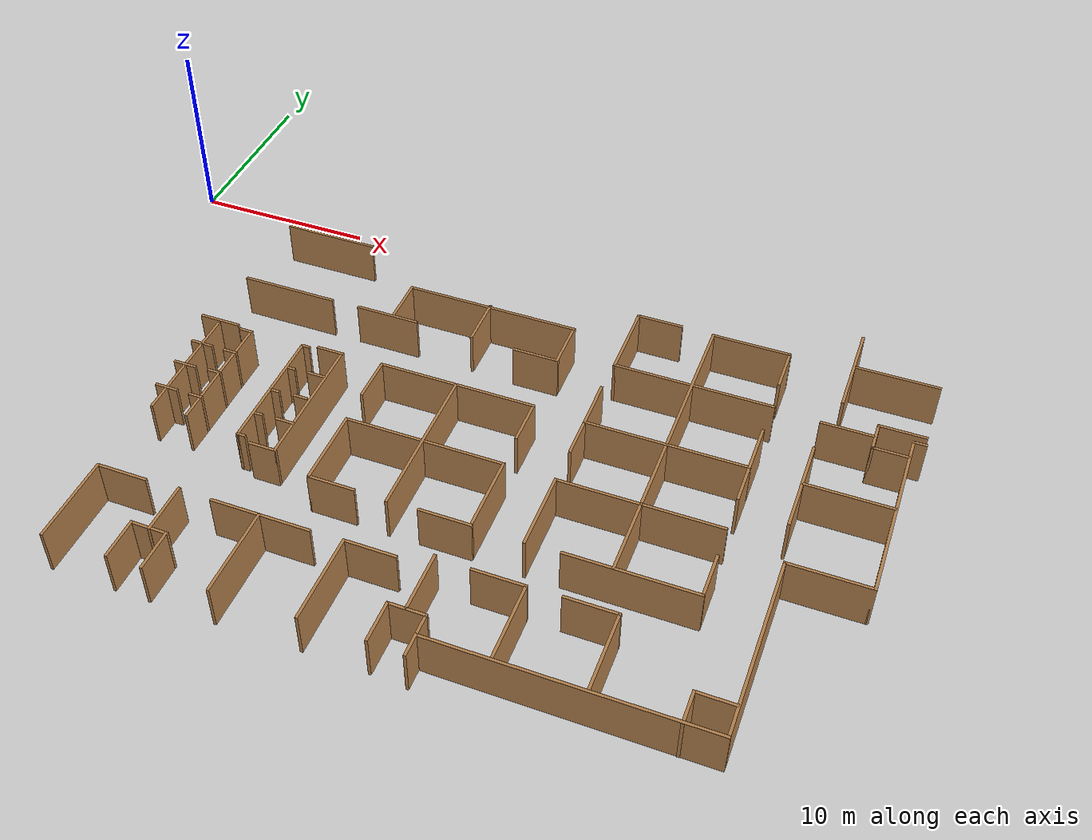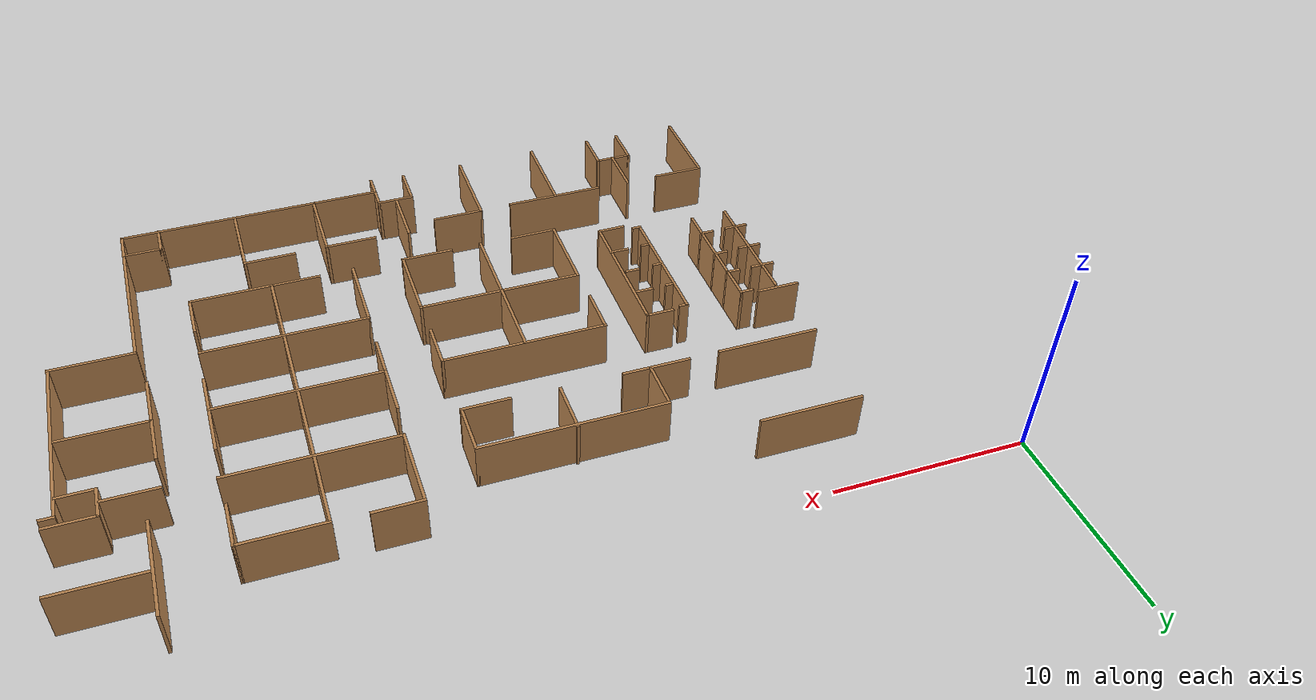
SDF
<sdf version="1.6">
 <model name="floor_plan">
  <pose>-1.19231 -1.13475 0 0 -0 0</pose>
  <link name="Wall_15">
   <collision name="Wall_15_Collision">
    <geometry><box><size>0.75 0.15 2.5</size></box></geometry>
    <pose>0 0 1.25 0 -0 0</pose>
   </collision>
   <visual name="Wall_15_Visual">
    <pose>0 0 1.25 0 -0 0</pose>
    <geometry><box><size>0.75 0.15 2.5</size></box></geometry>
    <material>
     <script><uri>file://media/materials/scripts/gazebo.material</uri><name>Gazebo/Wood</name></script>
     <ambient>1 1 1 1</ambient>
    </material>
   </visual>
   <pose>45.05 -6.1786 0 0 -0 3.14159</pose>
  </link>
  <link name="Wall_16">
   <collision name="Wall_16_Collision">
    <geometry><box><size>9.75 0.15 2.5</size></box></geometry>
    <pose>0 0 1.25 0 -0 0</pose>
   </collision>
   <visual name="Wall_16_Visual">
    <pose>0 0 1.25 0 -0 0</pose>
    <geometry><box><size>9.75 0.15 2.5</size></box></geometry>
    <material>
     <script><uri>file://media/materials/scripts/gazebo.material</uri><name>Gazebo/Wood</name></script>
     <ambient>1 1 1 1</ambient>
    </material>
   </visual>
   <pose>44.75 -10.9786 0 0 0 -1.5708</pose>
  </link>
  <link name="Wall_17">
   <collision name="Wall_17_Collision">
    <geometry><box><size>4.25 0.15 2.5</size></box></geometry>
    <pose>0 0 1.25 0 -0 0</pose>
   </collision>
   <visual name="Wall_17_Visual">
    <pose>0 0 1.25 0 -0 0</pose>
    <geometry><box><size>4.25 0.15 2.5</size></box></geometry>
    <material>
     <script><uri>file://media/materials/scripts/gazebo.material</uri><name>Gazebo/Wood</name></script>
     <ambient>1 1 1 1</ambient>
    </material>
   </visual>
   <pose>42.7 -15.7786 0 0 -0 3.14159</pose>
  </link>
  <link name="Wall_18">
   <collision name="Wall_18_Collision">
    <geometry><box><size>9.75 0.15 2.5</size></box></geometry>
    <pose>0 0 1.25 0 -0 0</pose>
   </collision>
   <visual name="Wall_18_Visual">
    <pose>0 0 1.25 0 -0 0</pose>
    <geometry><box><size>9.75 0.15 2.5</size></box></geometry>
    <material>
     <script><uri>file://media/materials/scripts/gazebo.material</uri><name>Gazebo/Wood</name></script>
     <ambient>1 1 1 1</ambient>
    </material>
   </visual>
   <pose>40.65 -20.5786 0 0 0 -1.5708</pose>
  </link>
  <link name="Wall_19">
   <collision name="Wall_19_Collision">
    <geometry><box><size>14 0.15 2.5</size></box></geometry>
    <pose>0 0 1.25 0 -0 0</pose>
   </collision>
   <visual name="Wall_19_Visual">
    <pose>0 0 1.25 0 -0 0</pose>
    <geometry><box><size>14 0.15 2.5</size></box></geometry>
    <material>
     <script><uri>file://media/materials/scripts/gazebo.material</uri><name>Gazebo/Wood</name></script>
     <ambient>1 1 1 1</ambient>
    </material>
   </visual>
   <pose>33.725 -25.3786 0 0 -0 3.14159</pose>
  </link>
  <link name="Wall_20">
   <collision name="Wall_20_Collision">
    <geometry><box><size>1.25 0.15 2.5</size></box></geometry>
    <pose>0 0 1.25 0 -0 0</pose>
   </collision>
   <visual name="Wall_20_Visual">
    <pose>0 0 1.25 0 -0 0</pose>
    <geometry><box><size>1.25 0.15 2.5</size></box></geometry>
    <material>
     <script><uri>file://media/materials/scripts/gazebo.material</uri><name>Gazebo/Wood</name></script>
     <ambient>1 1 1 1</ambient>
    </material>
   </visual>
   <pose>26.8 -25.9286 0 0 0 -1.5708</pose>
  </link>
  <link name="Wall_221">
   <collision name="Wall_221_Collision">
    <geometry><box><size>5.25 0.15 2.5</size></box></geometry>
    <pose>0 0 1.25 0 -0 0</pose>
   </collision>
   <visual name="Wall_221_Visual">
    <pose>0 0 1.25 0 -0 0</pose>
    <geometry><box><size>5.25 0.15 2.5</size></box></geometry>
    <material>
     <script><uri>file://media/materials/scripts/gazebo.material</uri><name>Gazebo/Wood</name></script>
     <ambient>1 1 1 1</ambient>
    </material>
   </visual>
   <pose>40.9639 -2.14991 0 0 0 -1.5708</pose>
  </link>
  <link name="Wall_223">
   <collision name="Wall_223_Collision">
    <geometry><box><size>4.4 0.15 2.5</size></box></geometry>
    <pose>0 0 1.25 0 -0 0</pose>
   </collision>
   <visual name="Wall_223_Visual">
    <pose>0 0 1.25 0 -0 0</pose>
    <geometry><box><size>4.4 0.15 2.5</size></box></geometry>
    <material>
     <script><uri>file://media/materials/scripts/gazebo.material</uri><name>Gazebo/Wood</name></script>
     <ambient>1 1 1 1</ambient>
    </material>
   </visual>
   <pose>43.2195 -1.93728 0 0 -0 3.14159</pose>
  </link>
  <link name="Wall_228">
   <collision name="Wall_228_Collision">
    <geometry><box><size>2.5 0.15 2.5</size></box></geometry>
    <pose>0 0 1.25 0 -0 0</pose>
   </collision>
   <visual name="Wall_228_Visual">
    <pose>0 0 1.25 0 -0 0</pose>
    <geometry><box><size>2.5 0.15 2.5</size></box></geometry>
    <material>
     <script><uri>file://media/materials/scripts/gazebo.material</uri><name>Gazebo/Wood</name></script>
     <ambient>1 1 1 1</ambient>
    </material>
   </visual>
   <pose>44.1176 -5.67636 0 0 -0 3.14159</pose>
  </link>
  <link name="Wall_229">
   <collision name="Wall_229_Collision">
    <geometry><box><size>1.75 0.15 2.5</size></box></geometry>
    <pose>0 0 1.25 0 -0 0</pose>
   </collision>
   <visual name="Wall_229_Visual">
    <pose>0 0 1.25 0 -0 0</pose>
    <geometry><box><size>1.75 0.15 2.5</size></box></geometry>
    <material>
     <script><uri>file://media/materials/scripts/gazebo.material</uri><name>Gazebo/Wood</name></script>
     <ambient>1 1 1 1</ambient>
    </material>
   </visual>
   <pose>42.9426 -6.47636 0 0 0 -1.5708</pose>
  </link>
  <link name="Wall_230">
   <collision name="Wall_230_Collision">
    <geometry><box><size>1.9 0.15 2.5</size></box></geometry>
    <pose>0 0 1.25 0 -0 0</pose>
   </collision>
   <visual name="Wall_230_Visual">
    <pose>0 0 1.25 0 -0 0</pose>
    <geometry><box><size>1.9 0.15 2.5</size></box></geometry>
    <material>
     <script><uri>file://media/materials/scripts/gazebo.material</uri><name>Gazebo/Wood</name></script>
     <ambient>1 1 1 1</ambient>
    </material>
   </visual>
   <pose>43.8176 -7.27636 0 0 -0 0</pose>
  </link>
  <link name="Wall_232">
   <collision name="Wall_232_Collision">
    <geometry><box><size>2.75 0.15 2.5</size></box></geometry>
    <pose>0 0 1.25 0 -0 0</pose>
   </collision>
   <visual name="Wall_232_Visual">
    <pose>0 0 1.25 0 -0 0</pose>
    <geometry><box><size>2.75 0.15 2.5</size></box></geometry>
    <material>
     <script><uri>file://media/materials/scripts/gazebo.material</uri><name>Gazebo/Wood</name></script>
     <ambient>1 1 1 1</ambient>
    </material>
   </visual>
   <pose>41.5582 -6.4904 0 0 -0 3.14159</pose>
  </link>
  <link name="Wall_234">
   <collision name="Wall_234_Collision">
    <geometry><box><size>5.25 0.15 2.5</size></box></geometry>
    <pose>0 0 1.25 0 -0 0</pose>
   </collision>
   <visual name="Wall_234_Visual">
    <pose>0 0 1.25 0 -0 0</pose>
    <geometry><box><size>5.25 0.15 2.5</size></box></geometry>
    <material>
     <script><uri>file://media/materials/scripts/gazebo.material</uri><name>Gazebo/Wood</name></script>
     <ambient>1 1 1 1</ambient>
    </material>
   </visual>
   <pose>40.2991 -10.8994 0 0 0 -1.5708</pose>
  </link>
  <link name="Wall_236">
   <collision name="Wall_236_Collision">
    <geometry><box><size>4.5 0.15 2.5</size></box></geometry>
    <pose>0 0 1.25 0 -0 0</pose>
   </collision>
   <visual name="Wall_236_Visual">
    <pose>0 0 1.25 0 -0 0</pose>
    <geometry><box><size>4.5 0.15 2.5</size></box></geometry>
    <material>
     <script><uri>file://media/materials/scripts/gazebo.material</uri><name>Gazebo/Wood</name></script>
     <ambient>1 1 1 1</ambient>
    </material>
   </visual>
   <pose>42.5224 -10.7998 0 0 -0 0</pose>
  </link>
  <link name="Wall_238">
   <collision name="Wall_238_Collision">
    <geometry><box><size>2 0.15 2.5</size></box></geometry>
    <pose>0 0 1.25 0 -0 0</pose>
   </collision>
   <visual name="Wall_238_Visual">
    <pose>0 0 1.25 0 -0 0</pose>
    <geometry><box><size>2 0.15 2.5</size></box></geometry>
    <material>
     <script><uri>file://media/materials/scripts/gazebo.material</uri><name>Gazebo/Wood</name></script>
     <ambient>1 1 1 1</ambient>
    </material>
   </visual>
   <pose>39.6556 -23.8032 0 0 -0 3.14159</pose>
  </link>
  <link name="Wall_239">
   <collision name="Wall_239_Collision">
    <geometry><box><size>1.75 0.15 2.5</size></box></geometry>
    <pose>0 0 1.25 0 -0 0</pose>
   </collision>
   <visual name="Wall_239_Visual">
    <pose>0 0 1.25 0 -0 0</pose>
    <geometry><box><size>1.75 0.15 2.5</size></box></geometry>
    <material>
     <script><uri>file://media/materials/scripts/gazebo.material</uri><name>Gazebo/Wood</name></script>
     <ambient>1 1 1 1</ambient>
    </material>
   </visual>
   <pose>38.7306 -24.6032 0 0 0 -1.5708</pose>
  </link>
  <link name="Wall_241">
   <collision name="Wall_241_Collision">
    <geometry><box><size>2.5 0.15 2.5</size></box></geometry>
    <pose>0 0 1.25 0 -0 0</pose>
   </collision>
   <visual name="Wall_241_Visual">
    <pose>0 0 1.25 0 -0 0</pose>
    <geometry><box><size>2.5 0.15 2.5</size></box></geometry>
    <material>
     <script><uri>file://media/materials/scripts/gazebo.material</uri><name>Gazebo/Wood</name></script>
     <ambient>1 1 1 1</ambient>
    </material>
   </visual>
   <pose>37.7304 -17.6945 0 0 0 -1.5708</pose>
  </link>
  <link name="Wall_242">
   <collision name="Wall_242_Collision">
    <geometry><box><size>6.75 0.15 2.5</size></box></geometry>
    <pose>0 0 1.25 0 -0 0</pose>
   </collision>
   <visual name="Wall_242_Visual">
    <pose>0 0 1.25 0 -0 0</pose>
    <geometry><box><size>6.75 0.15 2.5</size></box></geometry>
    <material>
     <script><uri>file://media/materials/scripts/gazebo.material</uri><name>Gazebo/Wood</name></script>
     <ambient>1 1 1 1</ambient>
    </material>
   </visual>
   <pose>34.4304 -18.8695 0 0 -0 3.14159</pose>
  </link>
  <link name="Wall_244">
   <collision name="Wall_244_Collision">
    <geometry><box><size>4.25 0.15 2.5</size></box></geometry>
    <pose>0 0 1.25 0 -0 0</pose>
   </collision>
   <visual name="Wall_244_Visual">
    <pose>0 0 1.25 0 -0 0</pose>
    <geometry><box><size>4.25 0.15 2.5</size></box></geometry>
    <material>
     <script><uri>file://media/materials/scripts/gazebo.material</uri><name>Gazebo/Wood</name></script>
     <ambient>1 1 1 1</ambient>
    </material>
   </visual>
   <pose>29.3262 -16.8568 0 0 -0 1.5708</pose>
  </link>
  <link name="Wall_245">
   <collision name="Wall_245_Collision">
    <geometry><box><size>8.5 0.15 2.5</size></box></geometry>
    <pose>0 0 1.25 0 -0 0</pose>
   </collision>
   <visual name="Wall_245_Visual">
    <pose>0 0 1.25 0 -0 0</pose>
    <geometry><box><size>8.5 0.15 2.5</size></box></geometry>
    <material>
     <script><uri>file://media/materials/scripts/gazebo.material</uri><name>Gazebo/Wood</name></script>
     <ambient>1 1 1 1</ambient>
    </material>
   </visual>
   <pose>33.5012 -14.8068 0 0 -0 0</pose>
  </link>
  <link name="Wall_247">
   <collision name="Wall_247_Collision">
    <geometry><box><size>16.75 0.15 2.5</size></box></geometry>
    <pose>0 0 1.25 0 -0 0</pose>
   </collision>
   <visual name="Wall_247_Visual">
    <pose>0 0 1.25 0 -0 0</pose>
    <geometry><box><size>16.75 0.15 2.5</size></box></geometry>
    <material>
     <script><uri>file://media/materials/scripts/gazebo.material</uri><name>Gazebo/Wood</name></script>
     <ambient>1 1 1 1</ambient>
    </material>
   </visual>
   <pose>33.575 -10.534 0 0 -0 1.5708</pose>
  </link>
  <link name="Wall_249">
   <collision name="Wall_249_Collision">
    <geometry><box><size>2.5 0.15 2.5</size></box></geometry>
    <pose>0 0 1.25 0 -0 0</pose>
   </collision>
   <visual name="Wall_249_Visual">
    <pose>0 0 1.25 0 -0 0</pose>
    <geometry><box><size>2.5 0.15 2.5</size></box></geometry>
    <material>
     <script><uri>file://media/materials/scripts/gazebo.material</uri><name>Gazebo/Wood</name></script>
     <ambient>1 1 1 1</ambient>
    </material>
   </visual>
   <pose>30.631 -2.1715 0 0 -0 3.14159</pose>
  </link>
  <link name="Wall_250">
   <collision name="Wall_250_Collision">
    <geometry><box><size>4.25 0.15 2.5</size></box></geometry>
    <pose>0 0 1.25 0 -0 0</pose>
   </collision>
   <visual name="Wall_250_Visual">
    <pose>0 0 1.25 0 -0 0</pose>
    <geometry><box><size>4.25 0.15 2.5</size></box></geometry>
    <material>
     <script><uri>file://media/materials/scripts/gazebo.material</uri><name>Gazebo/Wood</name></script>
     <ambient>1 1 1 1</ambient>
    </material>
   </visual>
   <pose>29.456 -4.2215 0 0 0 -1.5708</pose>
  </link>
  <link name="Wall_251">
   <collision name="Wall_251_Collision">
    <geometry><box><size>8.5 0.15 2.5</size></box></geometry>
    <pose>0 0 1.25 0 -0 0</pose>
   </collision>
   <visual name="Wall_251_Visual">
    <pose>0 0 1.25 0 -0 0</pose>
    <geometry><box><size>8.5 0.15 2.5</size></box></geometry>
    <material>
     <script><uri>file://media/materials/scripts/gazebo.material</uri><name>Gazebo/Wood</name></script>
     <ambient>1 1 1 1</ambient>
    </material>
   </visual>
   <pose>33.631 -6.2715 0 0 -0 0</pose>
  </link>
  <link name="Wall_253">
   <collision name="Wall_253_Collision">
    <geometry><box><size>4.25 0.15 2.5</size></box></geometry>
    <pose>0 0 1.25 0 -0 0</pose>
   </collision>
   <visual name="Wall_253_Visual">
    <pose>0 0 1.25 0 -0 0</pose>
    <geometry><box><size>4.25 0.15 2.5</size></box></geometry>
    <material>
     <script><uri>file://media/materials/scripts/gazebo.material</uri><name>Gazebo/Wood</name></script>
     <ambient>1 1 1 1</ambient>
    </material>
   </visual>
   <pose>35.6251 -2.23396 0 0 -0 0</pose>
  </link>
  <link name="Wall_254">
   <collision name="Wall_254_Collision">
    <geometry><box><size>2.5 0.15 2.5</size></box></geometry>
    <pose>0 0 1.25 0 -0 0</pose>
   </collision>
   <visual name="Wall_254_Visual">
    <pose>0 0 1.25 0 -0 0</pose>
    <geometry><box><size>2.5 0.15 2.5</size></box></geometry>
    <material>
     <script><uri>file://media/materials/scripts/gazebo.material</uri><name>Gazebo/Wood</name></script>
     <ambient>1 1 1 1</ambient>
    </material>
   </visual>
   <pose>37.675 -3.40896 0 0 0 -1.5708</pose>
  </link>
  <link name="Wall_256">
   <collision name="Wall_256_Collision">
    <geometry><box><size>2.75 0.15 2.5</size></box></geometry>
    <pose>0 0 1.25 0 -0 0</pose>
   </collision>
   <visual name="Wall_256_Visual">
    <pose>0 0 1.25 0 -0 0</pose>
    <geometry><box><size>2.75 0.15 2.5</size></box></geometry>
    <material>
     <script><uri>file://media/materials/scripts/gazebo.material</uri><name>Gazebo/Wood</name></script>
     <ambient>1 1 1 1</ambient>
    </material>
   </visual>
   <pose>29.357 -9.40409 0 0 0 -1.5708</pose>
  </link>
  <link name="Wall_257">
   <collision name="Wall_257_Collision">
    <geometry><box><size>8.5 0.15 2.5</size></box></geometry>
    <pose>0 0 1.25 0 -0 0</pose>
   </collision>
   <visual name="Wall_257_Visual">
    <pose>0 0 1.25 0 -0 0</pose>
    <geometry><box><size>8.5 0.15 2.5</size></box></geometry>
    <material>
     <script><uri>file://media/materials/scripts/gazebo.material</uri><name>Gazebo/Wood</name></script>
     <ambient>1 1 1 1</ambient>
    </material>
   </visual>
   <pose>33.532 -10.7041 0 0 -0 0</pose>
  </link>
  <link name="Wall_258">
   <collision name="Wall_258_Collision">
    <geometry><box><size>2.75 0.15 2.5</size></box></geometry>
    <pose>0 0 1.25 0 -0 0</pose>
   </collision>
   <visual name="Wall_258_Visual">
    <pose>0 0 1.25 0 -0 0</pose>
    <geometry><box><size>2.75 0.15 2.5</size></box></geometry>
    <material>
     <script><uri>file://media/materials/scripts/gazebo.material</uri><name>Gazebo/Wood</name></script>
     <ambient>1 1 1 1</ambient>
    </material>
   </visual>
   <pose>37.707 -9.40409 0 0 -0 1.5708</pose>
  </link>
  <link name="Wall_260">
   <collision name="Wall_260_Collision">
    <geometry><box><size>2.25 0.15 2.5</size></box></geometry>
    <pose>0 0 1.25 0 -0 0</pose>
   </collision>
   <visual name="Wall_260_Visual">
    <pose>0 0 1.25 0 -0 0</pose>
    <geometry><box><size>2.25 0.15 2.5</size></box></geometry>
    <material>
     <script><uri>file://media/materials/scripts/gazebo.material</uri><name>Gazebo/Wood</name></script>
     <ambient>1 1 1 1</ambient>
    </material>
   </visual>
   <pose>37.707 -11.7541 0 0 0 -1.5708</pose>
  </link>
  <link name="Wall_262">
   <collision name="Wall_262_Collision">
    <geometry><box><size>2.25 0.15 2.5</size></box></geometry>
    <pose>0 0 1.25 0 -0 0</pose>
   </collision>
   <visual name="Wall_262_Visual">
    <pose>0 0 1.25 0 -0 0</pose>
    <geometry><box><size>2.25 0.15 2.5</size></box></geometry>
    <material>
     <script><uri>file://media/materials/scripts/gazebo.material</uri><name>Gazebo/Wood</name></script>
     <ambient>1 1 1 1</ambient>
    </material>
   </visual>
   <pose>29.357 -11.7541 0 0 0 -1.5708</pose>
  </link>
  <link name="Wall_264">
   <collision name="Wall_264_Collision">
    <geometry><box><size>4.25 0.15 2.5</size></box></geometry>
    <pose>0 0 1.25 0 -0 0</pose>
   </collision>
   <visual name="Wall_264_Visual">
    <pose>0 0 1.25 0 -0 0</pose>
    <geometry><box><size>4.25 0.15 2.5</size></box></geometry>
    <material>
     <script><uri>file://media/materials/scripts/gazebo.material</uri><name>Gazebo/Wood</name></script>
     <ambient>1 1 1 1</ambient>
    </material>
   </visual>
   <pose>34.6333 -23.2208 0 0 -0 1.5708</pose>
  </link>
  <link name="Wall_265">
   <collision name="Wall_265_Collision">
    <geometry><box><size>2.75 0.15 2.5</size></box></geometry>
    <pose>0 0 1.25 0 -0 0</pose>
   </collision>
   <visual name="Wall_265_Visual">
    <pose>0 0 1.25 0 -0 0</pose>
    <geometry><box><size>2.75 0.15 2.5</size></box></geometry>
    <material>
     <script><uri>file://media/materials/scripts/gazebo.material</uri><name>Gazebo/Wood</name></script>
     <ambient>1 1 1 1</ambient>
    </material>
   </visual>
   <pose>33.3333 -21.1708 0 0 -0 3.14159</pose>
  </link>
  <link name="Wall_269">
   <collision name="Wall_269_Collision">
    <geometry><box><size>4.25 0.15 2.5</size></box></geometry>
    <pose>0 0 1.25 0 -0 0</pose>
   </collision>
   <visual name="Wall_269_Visual">
    <pose>0 0 1.25 0 -0 0</pose>
    <geometry><box><size>4.25 0.15 2.5</size></box></geometry>
    <material>
     <script><uri>file://media/materials/scripts/gazebo.material</uri><name>Gazebo/Wood</name></script>
     <ambient>1 1 1 1</ambient>
    </material>
   </visual>
   <pose>30.2855 -23.2732 0 0 -0 1.5708</pose>
  </link>
  <link name="Wall_270">
   <collision name="Wall_270_Collision">
    <geometry><box><size>2.75 0.15 2.5</size></box></geometry>
    <pose>0 0 1.25 0 -0 0</pose>
   </collision>
   <visual name="Wall_270_Visual">
    <pose>0 0 1.25 0 -0 0</pose>
    <geometry><box><size>2.75 0.15 2.5</size></box></geometry>
    <material>
     <script><uri>file://media/materials/scripts/gazebo.material</uri><name>Gazebo/Wood</name></script>
     <ambient>1 1 1 1</ambient>
    </material>
   </visual>
   <pose>28.9855 -21.2232 0 0 -0 3.14159</pose>
  </link>
  <link name="Wall_276">
   <collision name="Wall_276_Collision">
    <geometry><box><size>1.25 0.15 2.5</size></box></geometry>
    <pose>0 0 1.25 0 -0 0</pose>
   </collision>
   <visual name="Wall_276_Visual">
    <pose>0 0 1.25 0 -0 0</pose>
    <geometry><box><size>1.25 0.15 2.5</size></box></geometry>
    <material>
     <script><uri>file://media/materials/scripts/gazebo.material</uri><name>Gazebo/Wood</name></script>
     <ambient>1 1 1 1</ambient>
    </material>
   </visual>
   <pose>26.8 -24.8286 0 0 -0 1.5708</pose>
  </link>
  <link name="Wall_278">
   <collision name="Wall_278_Collision">
    <geometry><box><size>2 0.15 2.5</size></box></geometry>
    <pose>0 0 1.25 0 -0 0</pose>
   </collision>
   <visual name="Wall_278_Visual">
    <pose>0 0 1.25 0 -0 0</pose>
    <geometry><box><size>2 0.15 2.5</size></box></geometry>
    <material>
     <script><uri>file://media/materials/scripts/gazebo.material</uri><name>Gazebo/Wood</name></script>
     <ambient>1 1 1 1</ambient>
    </material>
   </visual>
   <pose>25.875 -24.2786 0 0 -0 3.14159</pose>
  </link>
  <link name="Wall_279">
   <collision name="Wall_279_Collision">
    <geometry><box><size>2.25 0.15 2.5</size></box></geometry>
    <pose>0 0 1.25 0 -0 0</pose>
   </collision>
   <visual name="Wall_279_Visual">
    <pose>0 0 1.25 0 -0 0</pose>
    <geometry><box><size>2.25 0.15 2.5</size></box></geometry>
    <material>
     <script><uri>file://media/materials/scripts/gazebo.material</uri><name>Gazebo/Wood</name></script>
     <ambient>1 1 1 1</ambient>
    </material>
   </visual>
   <pose>24.95 -25.3286 0 0 0 -1.5708</pose>
  </link>
  <link name="Wall_281">
   <collision name="Wall_281_Collision">
    <geometry><box><size>3.25 0.15 2.5</size></box></geometry>
    <pose>0 0 1.25 0 -0 0</pose>
   </collision>
   <visual name="Wall_281_Visual">
    <pose>0 0 1.25 0 -0 0</pose>
    <geometry><box><size>3.25 0.15 2.5</size></box></geometry>
    <material>
     <script><uri>file://media/materials/scripts/gazebo.material</uri><name>Gazebo/Wood</name></script>
     <ambient>1 1 1 1</ambient>
    </material>
   </visual>
   <pose>25.8315 -22.6587 0 0 0 -1.5708</pose>
  </link>
  <link name="Wall_283">
   <collision name="Wall_283_Collision">
    <geometry><box><size>4.75 0.15 2.5</size></box></geometry>
    <pose>0 0 1.25 0 -0 0</pose>
   </collision>
   <visual name="Wall_283_Visual">
    <pose>0 0 1.25 0 -0 0</pose>
    <geometry><box><size>4.75 0.15 2.5</size></box></geometry>
    <material>
     <script><uri>file://media/materials/scripts/gazebo.material</uri><name>Gazebo/Wood</name></script>
     <ambient>1 1 1 1</ambient>
    </material>
   </visual>
   <pose>21.6011 -24.0928 0 0 -0 1.5708</pose>
  </link>
  <link name="Wall_284">
   <collision name="Wall_284_Collision">
    <geometry><box><size>2.75 0.15 2.5</size></box></geometry>
    <pose>0 0 1.25 0 -0 0</pose>
   </collision>
   <visual name="Wall_284_Visual">
    <pose>0 0 1.25 0 -0 0</pose>
    <geometry><box><size>2.75 0.15 2.5</size></box></geometry>
    <material>
     <script><uri>file://media/materials/scripts/gazebo.material</uri><name>Gazebo/Wood</name></script>
     <ambient>1 1 1 1</ambient>
    </material>
   </visual>
   <pose>22.9011 -21.7928 0 0 -0 0</pose>
  </link>
  <link name="Wall_286">
   <collision name="Wall_286_Collision">
    <geometry><box><size>5.25 0.15 2.5</size></box></geometry>
    <pose>0 0 1.25 0 -0 0</pose>
   </collision>
   <visual name="Wall_286_Visual">
    <pose>0 0 1.25 0 -0 0</pose>
    <geometry><box><size>5.25 0.15 2.5</size></box></geometry>
    <material>
     <script><uri>file://media/materials/scripts/gazebo.material</uri><name>Gazebo/Wood</name></script>
     <ambient>1 1 1 1</ambient>
    </material>
   </visual>
   <pose>17.3025 -21.8431 0 0 -0 0</pose>
  </link>
  <link name="Wall_288">
   <collision name="Wall_288_Collision">
    <geometry><box><size>4.75 0.15 2.5</size></box></geometry>
    <pose>0 0 1.25 0 -0 0</pose>
   </collision>
   <visual name="Wall_288_Visual">
    <pose>0 0 1.25 0 -0 0</pose>
    <geometry><box><size>4.75 0.15 2.5</size></box></geometry>
    <material>
     <script><uri>file://media/materials/scripts/gazebo.material</uri><name>Gazebo/Wood</name></script>
     <ambient>1 1 1 1</ambient>
    </material>
   </visual>
   <pose>17.2588 -24.175 0 0 0 -1.5708</pose>
  </link>
  <link name="Wall_290">
   <collision name="Wall_290_Collision">
    <geometry><box><size>2.25 0.15 2.5</size></box></geometry>
    <pose>0 0 1.25 0 -0 0</pose>
   </collision>
   <visual name="Wall_290_Visual">
    <pose>0 0 1.25 0 -0 0</pose>
    <geometry><box><size>2.25 0.15 2.5</size></box></geometry>
    <material>
     <script><uri>file://media/materials/scripts/gazebo.material</uri><name>Gazebo/Wood</name></script>
     <ambient>1 1 1 1</ambient>
    </material>
   </visual>
   <pose>13.8425 -25.4226 0 0 -0 1.5708</pose>
  </link>
  <link name="Wall_291">
   <collision name="Wall_291_Collision">
    <geometry><box><size>2 0.15 2.5</size></box></geometry>
    <pose>0 0 1.25 0 -0 0</pose>
   </collision>
   <visual name="Wall_291_Visual">
    <pose>0 0 1.25 0 -0 0</pose>
    <geometry><box><size>2 0.15 2.5</size></box></geometry>
    <material>
     <script><uri>file://media/materials/scripts/gazebo.material</uri><name>Gazebo/Wood</name></script>
     <ambient>1 1 1 1</ambient>
    </material>
   </visual>
   <pose>12.9175 -24.3726 0 0 -0 3.14159</pose>
  </link>
  <link name="Wall_292">
   <collision name="Wall_292_Collision">
    <geometry><box><size>2.25 0.15 2.5</size></box></geometry>
    <pose>0 0 1.25 0 -0 0</pose>
   </collision>
   <visual name="Wall_292_Visual">
    <pose>0 0 1.25 0 -0 0</pose>
    <geometry><box><size>2.25 0.15 2.5</size></box></geometry>
    <material>
     <script><uri>file://media/materials/scripts/gazebo.material</uri><name>Gazebo/Wood</name></script>
     <ambient>1 1 1 1</ambient>
    </material>
   </visual>
   <pose>11.9925 -25.4226 0 0 0 -1.5708</pose>
  </link>
  <link name="Wall_294">
   <collision name="Wall_294_Collision">
    <geometry><box><size>2.75 0.15 2.5</size></box></geometry>
    <pose>0 0 1.25 0 -0 0</pose>
   </collision>
   <visual name="Wall_294_Visual">
    <pose>0 0 1.25 0 -0 0</pose>
    <geometry><box><size>2.75 0.15 2.5</size></box></geometry>
    <material>
     <script><uri>file://media/materials/scripts/gazebo.material</uri><name>Gazebo/Wood</name></script>
     <ambient>1 1 1 1</ambient>
    </material>
   </visual>
   <pose>12.9592 -23.0793 0 0 -0 1.5708</pose>
  </link>
  <link name="Wall_296">
   <collision name="Wall_296_Collision">
    <geometry><box><size>2.75 0.15 2.5</size></box></geometry>
    <pose>0 0 1.25 0 -0 0</pose>
   </collision>
   <visual name="Wall_296_Visual">
    <pose>0 0 1.25 0 -0 0</pose>
    <geometry><box><size>2.75 0.15 2.5</size></box></geometry>
    <material>
     <script><uri>file://media/materials/scripts/gazebo.material</uri><name>Gazebo/Wood</name></script>
     <ambient>1 1 1 1</ambient>
    </material>
   </visual>
   <pose>9.86009 -21.8642 0 0 -0 3.14159</pose>
  </link>
  <link name="Wall_297">
   <collision name="Wall_297_Collision">
    <geometry><box><size>4.75 0.15 2.5</size></box></geometry>
    <pose>0 0 1.25 0 -0 0</pose>
   </collision>
   <visual name="Wall_297_Visual">
    <pose>0 0 1.25 0 -0 0</pose>
    <geometry><box><size>4.75 0.15 2.5</size></box></geometry>
    <material>
     <script><uri>file://media/materials/scripts/gazebo.material</uri><name>Gazebo/Wood</name></script>
     <ambient>1 1 1 1</ambient>
    </material>
   </visual>
   <pose>8.56009 -24.1642 0 0 0 -1.5708</pose>
  </link>
  <link name="Wall_355">
   <collision name="Wall_355_Collision">
    <geometry><box><size>7.5 0.15 2.5</size></box></geometry>
    <pose>0 0 1.25 0 -0 0</pose>
   </collision>
   <visual name="Wall_355_Visual">
    <pose>0 0 1.25 0 -0 0</pose>
    <geometry><box><size>7.5 0.15 2.5</size></box></geometry>
    <material>
     <script><uri>file://media/materials/scripts/gazebo.material</uri><name>Gazebo/Wood</name></script>
     <ambient>1 1 1 1</ambient>
    </material>
   </visual>
   <pose>15.9998 -14.275 0 0 0 -1.5708</pose>
  </link>
  <link name="Wall_356">
   <collision name="Wall_356_Collision">
    <geometry><box><size>1.5 0.15 2.5</size></box></geometry>
    <pose>0 0 1.25 0 -0 0</pose>
   </collision>
   <visual name="Wall_356_Visual">
    <pose>0 0 1.25 0 -0 0</pose>
    <geometry><box><size>1.5 0.15 2.5</size></box></geometry>
    <material>
     <script><uri>file://media/materials/scripts/gazebo.material</uri><name>Gazebo/Wood</name></script>
     <ambient>1 1 1 1</ambient>
    </material>
   </visual>
   <pose>15.3248 -17.95 0 0 -0 3.14159</pose>
  </link>
  <link name="Wall_359">
   <collision name="Wall_359_Collision">
    <geometry><box><size>1.5 0.15 2.5</size></box></geometry>
    <pose>0 0 1.25 0 -0 0</pose>
   </collision>
   <visual name="Wall_359_Visual">
    <pose>0 0 1.25 0 -0 0</pose>
    <geometry><box><size>1.5 0.15 2.5</size></box></geometry>
    <material>
     <script><uri>file://media/materials/scripts/gazebo.material</uri><name>Gazebo/Wood</name></script>
     <ambient>1 1 1 1</ambient>
    </material>
   </visual>
   <pose>15.3248 -10.6 0 0 -0 3.14159</pose>
  </link>
  <link name="Wall_361">
   <collision name="Wall_361_Collision">
    <geometry><box><size>0.75 0.15 2.5</size></box></geometry>
    <pose>0 0 1.25 0 -0 0</pose>
   </collision>
   <visual name="Wall_361_Visual">
    <pose>0 0 1.25 0 -0 0</pose>
    <geometry><box><size>0.75 0.15 2.5</size></box></geometry>
    <material>
     <script><uri>file://media/materials/scripts/gazebo.material</uri><name>Gazebo/Wood</name></script>
     <ambient>1 1 1 1</ambient>
    </material>
   </visual>
   <pose>15.4696 -14.2231 0 0 -0 3.14159</pose>
  </link>
  <link name="Wall_363">
   <collision name="Wall_363_Collision">
    <geometry><box><size>1 0.15 2.5</size></box></geometry>
    <pose>0 0 1.25 0 -0 0</pose>
   </collision>
   <visual name="Wall_363_Visual">
    <pose>0 0 1.25 0 -0 0</pose>
    <geometry><box><size>1 0.15 2.5</size></box></geometry>
    <material>
     <script><uri>file://media/materials/scripts/gazebo.material</uri><name>Gazebo/Wood</name></script>
     <ambient>1 1 1 1</ambient>
    </material>
   </visual>
   <pose>15.4723 -12.4989 0 0 -0 3.14159</pose>
  </link>
  <link name="Wall_365">
   <collision name="Wall_365_Collision">
    <geometry><box><size>1 0.15 2.5</size></box></geometry>
    <pose>0 0 1.25 0 -0 0</pose>
   </collision>
   <visual name="Wall_365_Visual">
    <pose>0 0 1.25 0 -0 0</pose>
    <geometry><box><size>1 0.15 2.5</size></box></geometry>
    <material>
     <script><uri>file://media/materials/scripts/gazebo.material</uri><name>Gazebo/Wood</name></script>
     <ambient>1 1 1 1</ambient>
    </material>
   </visual>
   <pose>15.5362 -16.011 0 0 -0 3.14159</pose>
  </link>
  <link name="Wall_368">
   <collision name="Wall_368_Collision">
    <geometry><box><size>0.5 0.15 2.5</size></box></geometry>
    <pose>0 0 1.25 0 -0 0</pose>
   </collision>
   <visual name="Wall_368_Visual">
    <pose>0 0 1.25 0 -0 0</pose>
    <geometry><box><size>0.5 0.15 2.5</size></box></geometry>
    <material>
     <script><uri>file://media/materials/scripts/gazebo.material</uri><name>Gazebo/Wood</name></script>
     <ambient>1 1 1 1</ambient>
    </material>
   </visual>
   <pose>13.9663 -10.7748 0 0 -0 3.14159</pose>
  </link>
  <link name="Wall_369">
   <collision name="Wall_369_Collision">
    <geometry><box><size>7 0.15 2.5</size></box></geometry>
    <pose>0 0 1.25 0 -0 0</pose>
   </collision>
   <visual name="Wall_369_Visual">
    <pose>0 0 1.25 0 -0 0</pose>
    <geometry><box><size>7 0.15 2.5</size></box></geometry>
    <material>
     <script><uri>file://media/materials/scripts/gazebo.material</uri><name>Gazebo/Wood</name></script>
     <ambient>1 1 1 1</ambient>
    </material>
   </visual>
   <pose>13.7913 -14.1998 0 0 0 -1.5708</pose>
  </link>
  <link name="Wall_370">
   <collision name="Wall_370_Collision">
    <geometry><box><size>0.5 0.15 2.5</size></box></geometry>
    <pose>0 0 1.25 0 -0 0</pose>
   </collision>
   <visual name="Wall_370_Visual">
    <pose>0 0 1.25 0 -0 0</pose>
    <geometry><box><size>0.5 0.15 2.5</size></box></geometry>
    <material>
     <script><uri>file://media/materials/scripts/gazebo.material</uri><name>Gazebo/Wood</name></script>
     <ambient>1 1 1 1</ambient>
    </material>
   </visual>
   <pose>13.9663 -17.6248 0 0 -0 0</pose>
  </link>
  <link name="Wall_372">
   <collision name="Wall_372_Collision">
    <geometry><box><size>0.5 0.15 2.5</size></box></geometry>
    <pose>0 0 1.25 0 -0 0</pose>
   </collision>
   <visual name="Wall_372_Visual">
    <pose>0 0 1.25 0 -0 0</pose>
    <geometry><box><size>0.5 0.15 2.5</size></box></geometry>
    <material>
     <script><uri>file://media/materials/scripts/gazebo.material</uri><name>Gazebo/Wood</name></script>
     <ambient>1 1 1 1</ambient>
    </material>
   </visual>
   <pose>14.0289 -12.5309 0 0 -0 0</pose>
  </link>
  <link name="Wall_374">
   <collision name="Wall_374_Collision">
    <geometry><box><size>0.5 0.15 2.5</size></box></geometry>
    <pose>0 0 1.25 0 -0 0</pose>
   </collision>
   <visual name="Wall_374_Visual">
    <pose>0 0 1.25 0 -0 0</pose>
    <geometry><box><size>0.5 0.15 2.5</size></box></geometry>
    <material>
     <script><uri>file://media/materials/scripts/gazebo.material</uri><name>Gazebo/Wood</name></script>
     <ambient>1 1 1 1</ambient>
    </material>
   </visual>
   <pose>14.0608 -14.2869 0 0 -0 0</pose>
  </link>
  <link name="Wall_376">
   <collision name="Wall_376_Collision">
    <geometry><box><size>0.5 0.15 2.5</size></box></geometry>
    <pose>0 0 1.25 0 -0 0</pose>
   </collision>
   <visual name="Wall_376_Visual">
    <pose>0 0 1.25 0 -0 0</pose>
    <geometry><box><size>0.5 0.15 2.5</size></box></geometry>
    <material>
     <script><uri>file://media/materials/scripts/gazebo.material</uri><name>Gazebo/Wood</name></script>
     <ambient>1 1 1 1</ambient>
    </material>
   </visual>
   <pose>14.0608 -16.043 0 0 -0 0</pose>
  </link>
  <link name="Wall_378">
   <collision name="Wall_378_Collision">
    <geometry><box><size>2.25 0.15 2.5</size></box></geometry>
    <pose>0 0 1.25 0 -0 0</pose>
   </collision>
   <visual name="Wall_378_Visual">
    <pose>0 0 1.25 0 -0 0</pose>
    <geometry><box><size>2.25 0.15 2.5</size></box></geometry>
    <material>
     <script><uri>file://media/materials/scripts/gazebo.material</uri><name>Gazebo/Wood</name></script>
     <ambient>1 1 1 1</ambient>
    </material>
   </visual>
   <pose>8.80564 -10.5833 0 0 -0 0</pose>
  </link>
  <link name="Wall_380">
   <collision name="Wall_380_Collision">
    <geometry><box><size>6.75 0.15 2.5</size></box></geometry>
    <pose>0 0 1.25 0 -0 0</pose>
   </collision>
   <visual name="Wall_380_Visual">
    <pose>0 0 1.25 0 -0 0</pose>
    <geometry><box><size>6.75 0.15 2.5</size></box></geometry>
    <material>
     <script><uri>file://media/materials/scripts/gazebo.material</uri><name>Gazebo/Wood</name></script>
     <ambient>1 1 1 1</ambient>
    </material>
   </visual>
   <pose>8.8412 -14.1387 0 0 0 -1.5708</pose>
  </link>
  <link name="Wall_382">
   <collision name="Wall_382_Collision">
    <geometry><box><size>1.25 0.15 2.5</size></box></geometry>
    <pose>0 0 1.25 0 -0 0</pose>
   </collision>
   <visual name="Wall_382_Visual">
    <pose>0 0 1.25 0 -0 0</pose>
    <geometry><box><size>1.25 0.15 2.5</size></box></geometry>
    <material>
     <script><uri>file://media/materials/scripts/gazebo.material</uri><name>Gazebo/Wood</name></script>
     <ambient>1 1 1 1</ambient>
    </material>
   </visual>
   <pose>8.81649 -12.5309 0 0 -0 0</pose>
  </link>
  <link name="Wall_384">
   <collision name="Wall_384_Collision">
    <geometry><box><size>1.25 0.15 2.5</size></box></geometry>
    <pose>0 0 1.25 0 -0 0</pose>
   </collision>
   <visual name="Wall_384_Visual">
    <pose>0 0 1.25 0 -0 0</pose>
    <geometry><box><size>1.25 0.15 2.5</size></box></geometry>
    <material>
     <script><uri>file://media/materials/scripts/gazebo.material</uri><name>Gazebo/Wood</name></script>
     <ambient>1 1 1 1</ambient>
    </material>
   </visual>
   <pose>8.81649 -14.2231 0 0 -0 0</pose>
  </link>
  <link name="Wall_386">
   <collision name="Wall_386_Collision">
    <geometry><box><size>1.25 0.15 2.5</size></box></geometry>
    <pose>0 0 1.25 0 -0 0</pose>
   </collision>
   <visual name="Wall_386_Visual">
    <pose>0 0 1.25 0 -0 0</pose>
    <geometry><box><size>1.25 0.15 2.5</size></box></geometry>
    <material>
     <script><uri>file://media/materials/scripts/gazebo.material</uri><name>Gazebo/Wood</name></script>
     <ambient>1 1 1 1</ambient>
    </material>
   </visual>
   <pose>8.81649 -16.043 0 0 -0 0</pose>
  </link>
  <link name="Wall_388">
   <collision name="Wall_388_Collision">
    <geometry><box><size>0.75 0.15 2.5</size></box></geometry>
    <pose>0 0 1.25 0 -0 0</pose>
   </collision>
   <visual name="Wall_388_Visual">
    <pose>0 0 1.25 0 -0 0</pose>
    <geometry><box><size>0.75 0.15 2.5</size></box></geometry>
    <material>
     <script><uri>file://media/materials/scripts/gazebo.material</uri><name>Gazebo/Wood</name></script>
     <ambient>1 1 1 1</ambient>
    </material>
   </visual>
   <pose>10.4822 -10.8068 0 0 -0 0</pose>
  </link>
  <link name="Wall_389">
   <collision name="Wall_389_Collision">
    <geometry><box><size>6.75 0.15 2.5</size></box></geometry>
    <pose>0 0 1.25 0 -0 0</pose>
   </collision>
   <visual name="Wall_389_Visual">
    <pose>0 0 1.25 0 -0 0</pose>
    <geometry><box><size>6.75 0.15 2.5</size></box></geometry>
    <material>
     <script><uri>file://media/materials/scripts/gazebo.material</uri><name>Gazebo/Wood</name></script>
     <ambient>1 1 1 1</ambient>
    </material>
   </visual>
   <pose>10.7822 -14.1068 0 0 0 -1.5708</pose>
  </link>
  <link name="Wall_393">
   <collision name="Wall_393_Collision">
    <geometry><box><size>0.75 0.15 2.5</size></box></geometry>
    <pose>0 0 1.25 0 -0 0</pose>
   </collision>
   <visual name="Wall_393_Visual">
    <pose>0 0 1.25 0 -0 0</pose>
    <geometry><box><size>0.75 0.15 2.5</size></box></geometry>
    <material>
     <script><uri>file://media/materials/scripts/gazebo.material</uri><name>Gazebo/Wood</name></script>
     <ambient>1 1 1 1</ambient>
    </material>
   </visual>
   <pose>10.4888 -12.5309 0 0 -0 3.14159</pose>
  </link>
  <link name="Wall_395">
   <collision name="Wall_395_Collision">
    <geometry><box><size>0.75 0.15 2.5</size></box></geometry>
    <pose>0 0 1.25 0 -0 0</pose>
   </collision>
   <visual name="Wall_395_Visual">
    <pose>0 0 1.25 0 -0 0</pose>
    <geometry><box><size>0.75 0.15 2.5</size></box></geometry>
    <material>
     <script><uri>file://media/materials/scripts/gazebo.material</uri><name>Gazebo/Wood</name></script>
     <ambient>1 1 1 1</ambient>
    </material>
   </visual>
   <pose>10.4888 -14.1592 0 0 -0 3.14159</pose>
  </link>
  <link name="Wall_398">
   <collision name="Wall_398_Collision">
    <geometry><box><size>0.75 0.15 2.5</size></box></geometry>
    <pose>0 0 1.25 0 -0 0</pose>
   </collision>
   <visual name="Wall_398_Visual">
    <pose>0 0 1.25 0 -0 0</pose>
    <geometry><box><size>0.75 0.15 2.5</size></box></geometry>
    <material>
     <script><uri>file://media/materials/scripts/gazebo.material</uri><name>Gazebo/Wood</name></script>
     <ambient>1 1 1 1</ambient>
    </material>
   </visual>
   <pose>10.4888 -16.043 0 0 -0 3.14159</pose>
  </link>
  <link name="Wall_410">
   <collision name="Wall_410_Collision">
    <geometry><box><size>2.5 0.15 2.5</size></box></geometry>
    <pose>0 0 1.25 0 -0 0</pose>
   </collision>
   <visual name="Wall_410_Visual">
    <pose>0 0 1.25 0 -0 0</pose>
    <geometry><box><size>2.5 0.15 2.5</size></box></geometry>
    <material>
     <script><uri>file://media/materials/scripts/gazebo.material</uri><name>Gazebo/Wood</name></script>
     <ambient>1 1 1 1</ambient>
    </material>
   </visual>
   <pose>18.26 -11.739 0 0 -0 1.5708</pose>
  </link>
  <link name="Wall_411">
   <collision name="Wall_411_Collision">
    <geometry><box><size>8.5 0.15 2.5</size></box></geometry>
    <pose>0 0 1.25 0 -0 0</pose>
   </collision>
   <visual name="Wall_411_Visual">
    <pose>0 0 1.25 0 -0 0</pose>
    <geometry><box><size>8.5 0.15 2.5</size></box></geometry>
    <material>
     <script><uri>file://media/materials/scripts/gazebo.material</uri><name>Gazebo/Wood</name></script>
     <ambient>1 1 1 1</ambient>
    </material>
   </visual>
   <pose>22.435 -10.564 0 0 -0 0</pose>
  </link>
  <link name="Wall_412">
   <collision name="Wall_412_Collision">
    <geometry><box><size>2.5 0.15 2.5</size></box></geometry>
    <pose>0 0 1.25 0 -0 0</pose>
   </collision>
   <visual name="Wall_412_Visual">
    <pose>0 0 1.25 0 -0 0</pose>
    <geometry><box><size>2.5 0.15 2.5</size></box></geometry>
    <material>
     <script><uri>file://media/materials/scripts/gazebo.material</uri><name>Gazebo/Wood</name></script>
     <ambient>1 1 1 1</ambient>
    </material>
   </visual>
   <pose>26.61 -11.739 0 0 0 -1.5708</pose>
  </link>
  <link name="Wall_414">
   <collision name="Wall_414_Collision">
    <geometry><box><size>8.5 0.15 2.5</size></box></geometry>
    <pose>0 0 1.25 0 -0 0</pose>
   </collision>
   <visual name="Wall_414_Visual">
    <pose>0 0 1.25 0 -0 0</pose>
    <geometry><box><size>8.5 0.15 2.5</size></box></geometry>
    <material>
     <script><uri>file://media/materials/scripts/gazebo.material</uri><name>Gazebo/Wood</name></script>
     <ambient>1 1 1 1</ambient>
    </material>
   </visual>
   <pose>22.4821 -14.7658 0 0 -0 3.14159</pose>
  </link>
  <link name="Wall_415">
   <collision name="Wall_415_Collision">
    <geometry><box><size>4.25 0.15 2.5</size></box></geometry>
    <pose>0 0 1.25 0 -0 0</pose>
   </collision>
   <visual name="Wall_415_Visual">
    <pose>0 0 1.25 0 -0 0</pose>
    <geometry><box><size>4.25 0.15 2.5</size></box></geometry>
    <material>
     <script><uri>file://media/materials/scripts/gazebo.material</uri><name>Gazebo/Wood</name></script>
     <ambient>1 1 1 1</ambient>
    </material>
   </visual>
   <pose>18.3071 -16.8158 0 0 0 -1.5708</pose>
  </link>
  <link name="Wall_416">
   <collision name="Wall_416_Collision">
    <geometry><box><size>2.5 0.15 2.5</size></box></geometry>
    <pose>0 0 1.25 0 -0 0</pose>
   </collision>
   <visual name="Wall_416_Visual">
    <pose>0 0 1.25 0 -0 0</pose>
    <geometry><box><size>2.5 0.15 2.5</size></box></geometry>
    <material>
     <script><uri>file://media/materials/scripts/gazebo.material</uri><name>Gazebo/Wood</name></script>
     <ambient>1 1 1 1</ambient>
    </material>
   </visual>
   <pose>19.4821 -18.8658 0 0 -0 0</pose>
  </link>
  <link name="Wall_418">
   <collision name="Wall_418_Collision">
    <geometry><box><size>8.45 0.15 2.5</size></box></geometry>
    <pose>0 0 1.25 0 -0 0</pose>
   </collision>
   <visual name="Wall_418_Visual">
    <pose>0 0 1.25 0 -0 0</pose>
    <geometry><box><size>8.45 0.15 2.5</size></box></geometry>
    <material>
     <script><uri>file://media/materials/scripts/gazebo.material</uri><name>Gazebo/Wood</name></script>
     <ambient>1 1 1 1</ambient>
    </material>
   </visual>
   <pose>22.4106 -14.7652 0 0 0 -1.5708</pose>
  </link>
  <link name="Wall_420">
   <collision name="Wall_420_Collision">
    <geometry><box><size>4.25 0.15 2.5</size></box></geometry>
    <pose>0 0 1.25 0 -0 0</pose>
   </collision>
   <visual name="Wall_420_Visual">
    <pose>0 0 1.25 0 -0 0</pose>
    <geometry><box><size>4.25 0.15 2.5</size></box></geometry>
    <material>
     <script><uri>file://media/materials/scripts/gazebo.material</uri><name>Gazebo/Wood</name></script>
     <ambient>1 1 1 1</ambient>
    </material>
   </visual>
   <pose>26.6571 -16.8158 0 0 0 -1.5708</pose>
  </link>
  <link name="Wall_421">
   <collision name="Wall_421_Collision">
    <geometry><box><size>2.75 0.15 2.5</size></box></geometry>
    <pose>0 0 1.25 0 -0 0</pose>
   </collision>
   <visual name="Wall_421_Visual">
    <pose>0 0 1.25 0 -0 0</pose>
    <geometry><box><size>2.75 0.15 2.5</size></box></geometry>
    <material>
     <script><uri>file://media/materials/scripts/gazebo.material</uri><name>Gazebo/Wood</name></script>
     <ambient>1 1 1 1</ambient>
    </material>
   </visual>
   <pose>25.3571 -18.8658 0 0 -0 3.14159</pose>
  </link>
  <link name="Wall_425">
   <collision name="Wall_425_Collision">
    <geometry><box><size>9.5 0.15 2.5</size></box></geometry>
    <pose>0 0 1.25 0 -0 0</pose>
   </collision>
   <visual name="Wall_425_Visual">
    <pose>0 0 1.25 0 -0 0</pose>
    <geometry><box><size>9.5 0.15 2.5</size></box></geometry>
    <material>
     <script><uri>file://media/materials/scripts/gazebo.material</uri><name>Gazebo/Wood</name></script>
     <ambient>1 1 1 1</ambient>
    </material>
   </visual>
   <pose>21.8934 -4.43668 0 0 -0 0</pose>
  </link>
  <link name="Wall_446">
   <collision name="Wall_446_Collision">
    <geometry><box><size>2.6 0.15 2.5</size></box></geometry>
    <pose>0 0 1.25 0 -0 0</pose>
   </collision>
   <visual name="Wall_446_Visual">
    <pose>0 0 1.25 0 -0 0</pose>
    <geometry><box><size>2.6 0.15 2.5</size></box></geometry>
    <material>
     <script><uri>file://media/materials/scripts/gazebo.material</uri><name>Gazebo/Wood</name></script>
     <ambient>1 1 1 1</ambient>
    </material>
   </visual>
   <pose>17.2184 -5.66169 0 0 0 -1.5708</pose>
  </link>
  <link name="Wall_450">
   <collision name="Wall_450_Collision">
    <geometry><box><size>2.75 0.15 2.5</size></box></geometry>
    <pose>0 0 1.25 0 -0 0</pose>
   </collision>
   <visual name="Wall_450_Visual">
    <pose>0 0 1.25 0 -0 0</pose>
    <geometry><box><size>2.75 0.15 2.5</size></box></geometry>
    <material>
     <script><uri>file://media/materials/scripts/gazebo.material</uri><name>Gazebo/Wood</name></script>
     <ambient>1 1 1 1</ambient>
    </material>
   </visual>
   <pose>21.7721 -5.62536 0 0 0 -1.5708</pose>
  </link>
  <link name="Wall_452">
   <collision name="Wall_452_Collision">
    <geometry><box><size>2.75 0.15 2.5</size></box></geometry>
    <pose>0 0 1.25 0 -0 0</pose>
   </collision>
   <visual name="Wall_452_Visual">
    <pose>0 0 1.25 0 -0 0</pose>
    <geometry><box><size>2.75 0.15 2.5</size></box></geometry>
    <material>
     <script><uri>file://media/materials/scripts/gazebo.material</uri><name>Gazebo/Wood</name></script>
     <ambient>1 1 1 1</ambient>
    </material>
   </visual>
   <pose>26.5684 -5.73668 0 0 0 -1.5708</pose>
  </link>
  <link name="Wall_453">
   <collision name="Wall_453_Collision">
    <geometry><box><size>2.5 0.15 2.5</size></box></geometry>
    <pose>0 0 1.25 0 -0 0</pose>
   </collision>
   <visual name="Wall_453_Visual">
    <pose>0 0 1.25 0 -0 0</pose>
    <geometry><box><size>2.5 0.15 2.5</size></box></geometry>
    <material>
     <script><uri>file://media/materials/scripts/gazebo.material</uri><name>Gazebo/Wood</name></script>
     <ambient>1 1 1 1</ambient>
    </material>
   </visual>
   <pose>25.3934 -7.03669 0 0 -0 3.14159</pose>
  </link>
  <link name="Wall_458">
   <collision name="Wall_458_Collision">
    <geometry><box><size>3.5 0.15 2.5</size></box></geometry>
    <pose>0 0 1.25 0 -0 0</pose>
   </collision>
   <visual name="Wall_458_Visual">
    <pose>0 0 1.25 0 -0 0</pose>
    <geometry><box><size>3.5 0.15 2.5</size></box></geometry>
    <material>
     <script><uri>file://media/materials/scripts/gazebo.material</uri><name>Gazebo/Wood</name></script>
     <ambient>1 1 1 1</ambient>
    </material>
   </visual>
   <pose>16.9018 -6.94346 0 0 -0 0</pose>
  </link>
  <link name="Wall_471">
   <collision name="Wall_471_Collision">
    <geometry><box><size>5.25 0.15 2.5</size></box></geometry>
    <pose>0 0 1.25 0 -0 0</pose>
   </collision>
   <visual name="Wall_471_Visual">
    <pose>0 0 1.25 0 -0 0</pose>
    <geometry><box><size>5.25 0.15 2.5</size></box></geometry>
    <material>
     <script><uri>file://media/materials/scripts/gazebo.material</uri><name>Gazebo/Wood</name></script>
     <ambient>1 1 1 1</ambient>
    </material>
   </visual>
   <pose>11.04 -6.96814 0 0 -0 0</pose>
  </link>
  <link name="Wall_475">
   <collision name="Wall_475_Collision">
    <geometry><box><size>5.25 0.15 2.5</size></box></geometry>
    <pose>0 0 1.25 0 -0 0</pose>
   </collision>
   <visual name="Wall_475_Visual">
    <pose>0 0 1.25 0 -0 0</pose>
    <geometry><box><size>5.25 0.15 2.5</size></box></geometry>
    <material>
     <script><uri>file://media/materials/scripts/gazebo.material</uri><name>Gazebo/Wood</name></script>
     <ambient>1 1 1 1</ambient>
    </material>
   </visual>
   <pose>11.0719 -1.99461 0 0 -0 0</pose>
  </link>
  <static>1</static>
 </model>
</sdf>
